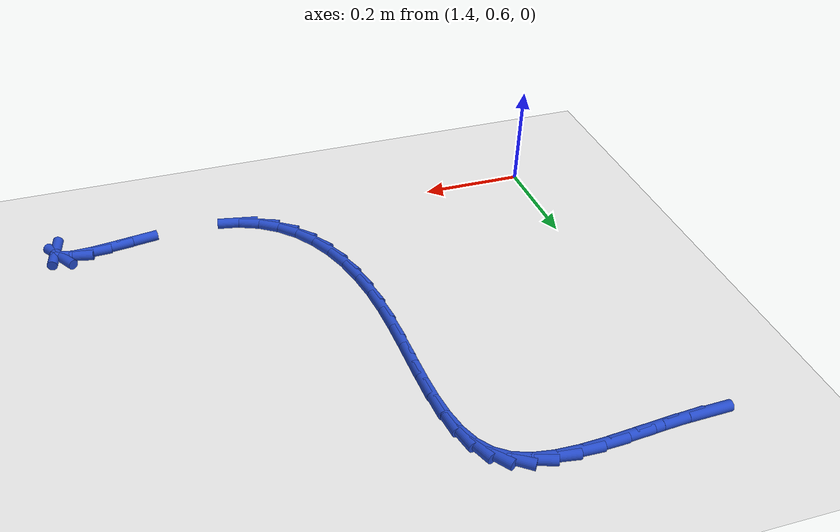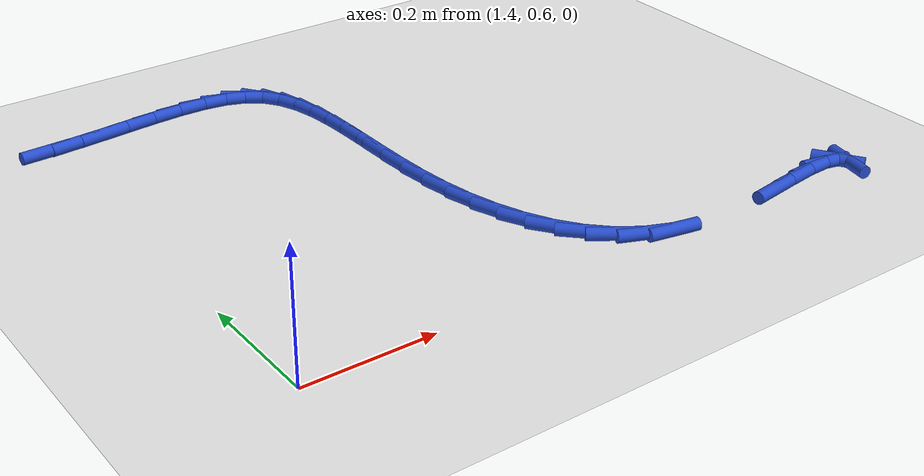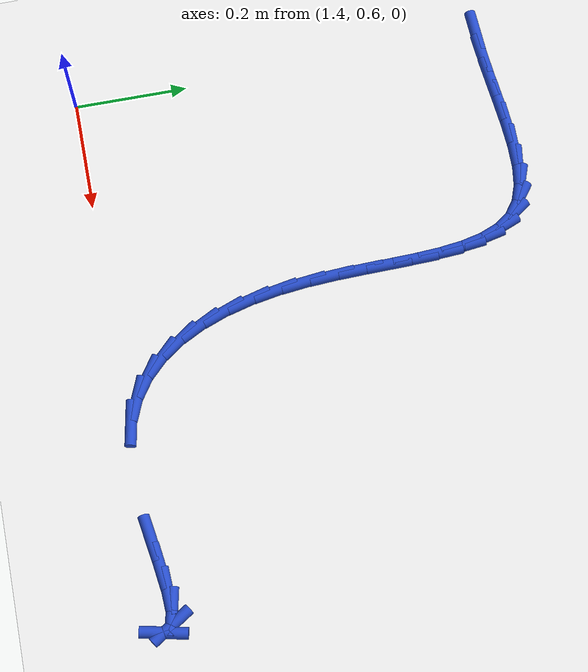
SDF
<sdf version="1.6">
 <world name="default">
  <model name="ground_plane">
   <static>1</static>
   <link name="link">
    <collision name="collision">
     <geometry><plane><normal>0 0 1</normal><size>100 100</size></plane></geometry>
     <surface><friction><ode><mu>100</mu><mu2>50</mu2></ode></friction></surface>
    </collision>
    <visual name="visual">
     <cast_shadows>0</cast_shadows>
     <geometry><plane><normal>0 0 1</normal><size>100 100</size></plane></geometry>
     <material>
      <script><uri>file://media/materials/scripts/gazebo.material</uri><name>Gazebo/WhiteGlow</name></script>
     </material>
    </visual>
   </link>
  </model>
  <model name="line">
   <link name="link_50">
    <pose>1.3924329439897525 1.3359149589456965 0.01 0 1.57 0.03264071453201777</pose>
    <collision name="collision">
     <geometry><cylinder><radius>0.01</radius><length>0.08</length></cylinder></geometry>
    </collision>
    <visual name="visual">
     <material>
      <script><name>Gazebo/Blue</name><uri>file://media/materials/scripts/gazebo.material</uri></script>
     </material>
     <geometry><cylinder><radius>0.01</radius><length>0.08</length></cylinder></geometry>
    </visual>
   </link>
   <link name="link_51">
    <pose>1.4405463122286135 1.337485971630666 0.01 0 1.57 0.0739321914490907</pose>
    <collision name="collision">
     <geometry><cylinder><radius>0.01</radius><length>0.08</length></cylinder></geometry>
    </collision>
    <visual name="visual">
     <material>
      <script><name>Gazebo/Blue</name><uri>file://media/materials/scripts/gazebo.material</uri></script>
     </material>
     <geometry><cylinder><radius>0.01</radius><length>0.08</length></cylinder></geometry>
    </visual>
   </link>
   <link name="link_52">
    <pose>1.4891605519703146 1.3410866917770883 0.01 0 1.57 0.09031469338997089</pose>
    <collision name="collision">
     <geometry><cylinder><radius>0.01</radius><length>0.08</length></cylinder></geometry>
    </collision>
    <visual name="visual">
     <material>
      <script><name>Gazebo/Blue</name><uri>file://media/materials/scripts/gazebo.material</uri></script>
     </material>
     <geometry><cylinder><radius>0.01</radius><length>0.08</length></cylinder></geometry>
    </visual>
   </link>
   <link name="link_53">
    <pose>1.537285607584171 1.3454449475933477 0.01 0 1.57 0.08176173282360281</pose>
    <collision name="collision">
     <geometry><cylinder><radius>0.01</radius><length>0.08</length></cylinder></geometry>
    </collision>
    <visual name="visual">
     <material>
      <script><name>Gazebo/Blue</name><uri>file://media/materials/scripts/gazebo.material</uri></script>
     </material>
     <geometry><cylinder><radius>0.01</radius><length>0.08</length></cylinder></geometry>
    </visual>
   </link>
   <link name="link_54">
    <pose>1.5839227410869665 1.3492666001315954 0.01 0 1.57 0.04506321978561428</pose>
    <collision name="collision">
     <geometry><cylinder><radius>0.01</radius><length>0.08</length></cylinder></geometry>
    </collision>
    <visual name="visual">
     <material>
      <script><name>Gazebo/Blue</name><uri>file://media/materials/scripts/gazebo.material</uri></script>
     </material>
     <geometry><cylinder><radius>0.01</radius><length>0.08</length></cylinder></geometry>
    </visual>
   </link>
   <link name="link_55">
    <pose>1.6280732144954837 1.351257510443982 0.01 0 1.57 -0.027878395919522837</pose>
    <collision name="collision">
     <geometry><cylinder><radius>0.01</radius><length>0.08</length></cylinder></geometry>
    </collision>
    <visual name="visual">
     <material>
      <script><name>Gazebo/Blue</name><uri>file://media/materials/scripts/gazebo.material</uri></script>
     </material>
     <geometry><cylinder><radius>0.01</radius><length>0.08</length></cylinder></geometry>
    </visual>
   </link>
   <link name="link_56">
    <pose>1.6687382898265068 1.350123539582658 0.01 0 1.57 -0.1522900121381133</pose>
    <collision name="collision">
     <geometry><cylinder><radius>0.01</radius><length>0.08</length></cylinder></geometry>
    </collision>
    <visual name="visual">
     <material>
      <script><name>Gazebo/Blue</name><uri>file://media/materials/scripts/gazebo.material</uri></script>
     </material>
     <geometry><cylinder><radius>0.01</radius><length>0.08</length></cylinder></geometry>
    </visual>
   </link>
   <link name="link_57">
    <pose>1.7049192290968194 1.3445705485997748 0.01 0 1.57 -0.3517374468548224</pose>
    <collision name="collision">
     <geometry><cylinder><radius>0.01</radius><length>0.08</length></cylinder></geometry>
    </collision>
    <visual name="visual">
     <material>
      <script><name>Gazebo/Blue</name><uri>file://media/materials/scripts/gazebo.material</uri></script>
     </material>
     <geometry><cylinder><radius>0.01</radius><length>0.08</length></cylinder></geometry>
    </visual>
   </link>
   <link name="link_58">
    <pose>1.7356172943232036 1.3333043985474828 0.01 0 1.57 -0.6435152422987169</pose>
    <collision name="collision">
     <geometry><cylinder><radius>0.01</radius><length>0.08</length></cylinder></geometry>
    </collision>
    <visual name="visual">
     <material>
      <script><name>Gazebo/Blue</name><uri>file://media/materials/scripts/gazebo.material</uri></script>
     </material>
     <geometry><cylinder><radius>0.01</radius><length>0.08</length></cylinder></geometry>
    </visual>
   </link>
   <link name="link_59">
    <pose>1.7598941392637613 1.3150962287161942 0.01 0 1.57 -0.9528662296585302</pose>
    <collision name="collision">
     <geometry><cylinder><radius>0.01</radius><length>0.08</length></cylinder></geometry>
    </collision>
    <visual name="visual">
     <material>
      <script><name>Gazebo/Blue</name><uri>file://media/materials/scripts/gazebo.material</uri></script>
     </material>
     <geometry><cylinder><radius>0.01</radius><length>0.08</length></cylinder></geometry>
    </visual>
   </link>
   <link name="link_60">
    <pose>1.7778478101107646 1.2898374287943881 0.01 0 1.57 -1.19001909236368</pose>
    <collision name="collision">
     <geometry><cylinder><radius>0.01</radius><length>0.08</length></cylinder></geometry>
    </collision>
    <visual name="visual">
     <material>
      <script><name>Gazebo/Blue</name><uri>file://media/materials/scripts/gazebo.material</uri></script>
     </material>
     <geometry><cylinder><radius>0.01</radius><length>0.08</length></cylinder></geometry>
    </visual>
   </link>
   <link name="link_61">
    <pose>1.7904480327598677 1.2583615986821408 0.01 0 1.57 -1.350595843162712</pose>
    <collision name="collision">
     <geometry><cylinder><radius>0.01</radius><length>0.08</length></cylinder></geometry>
    </collision>
    <visual name="visual">
     <material>
      <script><name>Gazebo/Blue</name><uri>file://media/materials/scripts/gazebo.material</uri></script>
     </material>
     <geometry><cylinder><radius>0.01</radius><length>0.08</length></cylinder></geometry>
    </visual>
   </link>
   <link name="link_62">
    <pose>1.7986916726410191 1.2215316737639401 0.01 0 1.57 -1.4531477053261797</pose>
    <collision name="collision">
     <geometry><cylinder><radius>0.01</radius><length>0.08</length></cylinder></geometry>
    </collision>
    <visual name="visual">
     <material>
      <script><name>Gazebo/Blue</name><uri>file://media/materials/scripts/gazebo.material</uri></script>
     </material>
     <geometry><cylinder><radius>0.01</radius><length>0.08</length></cylinder></geometry>
    </visual>
   </link>
   <link name="link_63">
    <pose>1.8035755951841685 1.1802105894242738 0.01 0 1.57 -1.5147680551032905</pose>
    <collision name="collision">
     <geometry><cylinder><radius>0.01</radius><length>0.08</length></cylinder></geometry>
    </collision>
    <visual name="visual">
     <material>
      <script><name>Gazebo/Blue</name><uri>file://media/materials/scripts/gazebo.material</uri></script>
     </material>
     <geometry><cylinder><radius>0.01</radius><length>0.08</length></cylinder></geometry>
    </visual>
   </link>
   <link name="link_64">
    <pose>1.8060966658192623 1.1352612810476292 0.01 0 1.57 -1.5465928614473223</pose>
    <collision name="collision">
     <geometry><cylinder><radius>0.01</radius><length>0.08</length></cylinder></geometry>
    </collision>
    <visual name="visual">
     <material>
      <script><name>Gazebo/Blue</name><uri>file://media/materials/scripts/gazebo.material</uri></script>
     </material>
     <geometry><cylinder><radius>0.01</radius><length>0.08</length></cylinder></geometry>
    </visual>
   </link>
   <link name="link_65">
    <pose>1.8072517499762508 1.0875466840184942 0.01 0 1.57 -1.5549570344821428</pose>
    <collision name="collision">
     <geometry><cylinder><radius>0.01</radius><length>0.08</length></cylinder></geometry>
    </collision>
    <visual name="visual">
     <material>
      <script><name>Gazebo/Blue</name><uri>file://media/materials/scripts/gazebo.material</uri></script>
     </material>
     <geometry><cylinder><radius>0.01</radius><length>0.08</length></cylinder></geometry>
    </visual>
   </link>
   <link name="link_66">
    <pose>1.8080377130850822 1.0379297337213569 0.01 0 1.57 -1.542895774640368</pose>
    <collision name="collision">
     <geometry><cylinder><radius>0.01</radius><length>0.08</length></cylinder></geometry>
    </collision>
    <visual name="visual">
     <material>
      <script><name>Gazebo/Blue</name><uri>file://media/materials/scripts/gazebo.material</uri></script>
     </material>
     <geometry><cylinder><radius>0.01</radius><length>0.08</length></cylinder></geometry>
    </visual>
   </link>
   <link name="link_67">
    <pose>1.8094514205757055 0.9872733655407046 0.01 0 1.57 -1.5110966084866622</pose>
    <collision name="collision">
     <geometry><cylinder><radius>0.01</radius><length>0.08</length></cylinder></geometry>
    </collision>
    <visual name="visual">
     <material>
      <script><name>Gazebo/Blue</name><uri>file://media/materials/scripts/gazebo.material</uri></script>
     </material>
     <geometry><cylinder><radius>0.01</radius><length>0.08</length></cylinder></geometry>
    </visual>
   </link>
   <link name="link_68">
    <pose>1.8124897378780687 0.9364405148610253 0.01 0 1.57 -1.4587074859406117</pose>
    <collision name="collision">
     <geometry><cylinder><radius>0.01</radius><length>0.08</length></cylinder></geometry>
    </collision>
    <visual name="visual">
     <material>
      <script><name>Gazebo/Blue</name><uri>file://media/materials/scripts/gazebo.material</uri></script>
     </material>
     <geometry><cylinder><radius>0.01</radius><length>0.08</length></cylinder></geometry>
    </visual>
   </link>
   <link name="link_69">
    <pose>1.818134454134875 0.8862922887702744 0.01 0 1.57 -1.389956284617966</pose>
    <collision name="collision">
     <geometry><cylinder><radius>0.01</radius><length>0.08</length></cylinder></geometry>
    </collision>
    <visual name="visual">
     <material>
      <script><name>Gazebo/Blue</name><uri>file://media/materials/scripts/gazebo.material</uri></script>
     </material>
     <geometry><cylinder><radius>0.01</radius><length>0.08</length></cylinder></geometry>
    </visual>
   </link>
   <link name="link_70">
    <pose>1.8270283308367412 0.837648680581473 0.01 0 1.57 -1.308413541132311</pose>
    <collision name="collision">
     <geometry><cylinder><radius>0.01</radius><length>0.08</length></cylinder></geometry>
    </collision>
    <visual name="visual">
     <material>
      <script><name>Gazebo/Blue</name><uri>file://media/materials/scripts/gazebo.material</uri></script>
     </material>
     <geometry><cylinder><radius>0.01</radius><length>0.08</length></cylinder></geometry>
    </visual>
   </link>
   <link name="link_71">
    <pose>1.8394793398102496 0.7912890837721642 0.01 0 1.57 -1.2107068170605686</pose>
    <collision name="collision">
     <geometry><cylinder><radius>0.01</radius><length>0.08</length></cylinder></geometry>
    </collision>
    <visual name="visual">
     <material>
      <script><name>Gazebo/Blue</name><uri>file://media/materials/scripts/gazebo.material</uri></script>
     </material>
     <geometry><cylinder><radius>0.01</radius><length>0.08</length></cylinder></geometry>
    </visual>
   </link>
   <link name="link_72">
    <pose>1.8557812242343938 0.7479911663163469 0.01 0 1.57 -1.0927134948473172</pose>
    <collision name="collision">
     <geometry><cylinder><radius>0.01</radius><length>0.08</length></cylinder></geometry>
    </collision>
    <visual name="visual">
     <material>
      <script><name>Gazebo/Blue</name><uri>file://media/materials/scripts/gazebo.material</uri></script>
     </material>
     <geometry><cylinder><radius>0.01</radius><length>0.08</length></cylinder></geometry>
    </visual>
   </link>
   <link name="link_73">
    <pose>1.8762277272881676 0.7085325961880219 0.01 0 1.57 -0.9505840917783098</pose>
    <collision name="collision">
     <geometry><cylinder><radius>0.01</radius><length>0.08</length></cylinder></geometry>
    </collision>
    <visual name="visual">
     <material>
      <script><name>Gazebo/Blue</name><uri>file://media/materials/scripts/gazebo.material</uri></script>
     </material>
     <geometry><cylinder><radius>0.01</radius><length>0.08</length></cylinder></geometry>
    </visual>
   </link>
   <link name="link_74">
    <pose>1.901112592150564 0.6736910413611894 0.01 0 1.57 -0.7825182655719428</pose>
    <collision name="collision">
     <geometry><cylinder><radius>0.01</radius><length>0.08</length></cylinder></geometry>
    </collision>
    <visual name="visual">
     <material>
      <script><name>Gazebo/Blue</name><uri>file://media/materials/scripts/gazebo.material</uri></script>
     </material>
     <geometry><cylinder><radius>0.01</radius><length>0.08</length></cylinder></geometry>
    </visual>
   </link>
   <link name="link_75">
    <pose>1.9307295620005764 0.6442441698098494 0.01 0 1.57 -0.591577374526817</pose>
    <collision name="collision">
     <geometry><cylinder><radius>0.01</radius><length>0.08</length></cylinder></geometry>
    </collision>
    <visual name="visual">
     <material>
      <script><name>Gazebo/Blue</name><uri>file://media/materials/scripts/gazebo.material</uri></script>
     </material>
     <geometry><cylinder><radius>0.01</radius><length>0.08</length></cylinder></geometry>
    </visual>
   </link>
   <link name="link_76">
    <pose>1.9653723800171985 0.620969649508002 0.01 0 1.57 -0.3878093489161075</pose>
    <collision name="collision">
     <geometry><cylinder><radius>0.01</radius><length>0.08</length></cylinder></geometry>
    </collision>
    <visual name="visual">
     <material>
      <script><name>Gazebo/Blue</name><uri>file://media/materials/scripts/gazebo.material</uri></script>
     </material>
     <geometry><cylinder><radius>0.01</radius><length>0.08</length></cylinder></geometry>
    </visual>
   </link>
   <link name="link_77">
    <pose>2.005334789379424 0.6046451484296478 0.01 0 1.57 -0.18697481943697516</pose>
    <collision name="collision">
     <geometry><cylinder><radius>0.01</radius><length>0.08</length></cylinder></geometry>
    </collision>
    <visual name="visual">
     <material>
      <script><name>Gazebo/Blue</name><uri>file://media/materials/scripts/gazebo.material</uri></script>
     </material>
     <geometry><cylinder><radius>0.01</radius><length>0.08</length></cylinder></geometry>
    </visual>
   </link>
   <link name="link_81">
    <pose>2.2054631438141317 0.6052041812888639 0.01 0 1.57 0.147791438283808</pose>
    <collision name="collision">
     <geometry><cylinder><radius>0.01</radius><length>0.08</length></cylinder></geometry>
    </collision>
    <visual name="visual">
     <material>
      <script><name>Gazebo/Blue</name><uri>file://media/materials/scripts/gazebo.material</uri></script>
     </material>
     <geometry><cylinder><radius>0.01</radius><length>0.08</length></cylinder></geometry>
    </visual>
   </link>
   <link name="link_82">
    <pose>2.2540547846934245 0.6124383570067274 0.01 0 1.57 0.12837179654970698</pose>
    <collision name="collision">
     <geometry><cylinder><radius>0.01</radius><length>0.08</length></cylinder></geometry>
    </collision>
    <visual name="visual">
     <material>
      <script><name>Gazebo/Blue</name><uri>file://media/materials/scripts/gazebo.material</uri></script>
     </material>
     <geometry><cylinder><radius>0.01</radius><length>0.08</length></cylinder></geometry>
    </visual>
   </link>
   <link name="link_83">
    <pose>2.2966589825938826 0.617937776566931 0.01 0 1.57 0.04336823464539689</pose>
    <collision name="collision">
     <geometry><cylinder><radius>0.01</radius><length>0.08</length></cylinder></geometry>
    </collision>
    <visual name="visual">
     <material>
      <script><name>Gazebo/Blue</name><uri>file://media/materials/scripts/gazebo.material</uri></script>
     </material>
     <geometry><cylinder><radius>0.01</radius><length>0.08</length></cylinder></geometry>
    </visual>
   </link>
   <link name="link_84">
    <pose>2.330563139627714 0.6194090625203653 0.01 0 1.57 -0.2123943496498983</pose>
    <collision name="collision">
     <geometry><cylinder><radius>0.01</radius><length>0.08</length></cylinder></geometry>
    </collision>
    <visual name="visual">
     <material>
      <script><name>Gazebo/Blue</name><uri>file://media/materials/scripts/gazebo.material</uri></script>
     </material>
     <geometry><cylinder><radius>0.01</radius><length>0.08</length></cylinder></geometry>
    </visual>
   </link>
   <link name="link_85">
    <pose>2.353054657907131 0.6145588374179213 0.01 0 1.57 -1.0004877508157324</pose>
    <collision name="collision">
     <geometry><cylinder><radius>0.01</radius><length>0.08</length></cylinder></geometry>
    </collision>
    <visual name="visual">
     <material>
      <script><name>Gazebo/Blue</name><uri>file://media/materials/scripts/gazebo.material</uri></script>
     </material>
     <geometry><cylinder><radius>0.01</radius><length>0.08</length></cylinder></geometry>
    </visual>
   </link>
   <link name="link_86">
    <pose>2.3616142075643625 0.6012138164970053 0.01 0 1.57 1.3543942204053674</pose>
    <collision name="collision">
     <geometry><cylinder><radius>0.01</radius><length>0.08</length></cylinder></geometry>
    </collision>
    <visual name="visual">
     <material>
      <script><name>Gazebo/Blue</name><uri>file://media/materials/scripts/gazebo.material</uri></script>
     </material>
     <geometry><cylinder><radius>0.01</radius><length>0.08</length></cylinder></geometry>
    </visual>
   </link>
  </model>
 </world>
</sdf>
